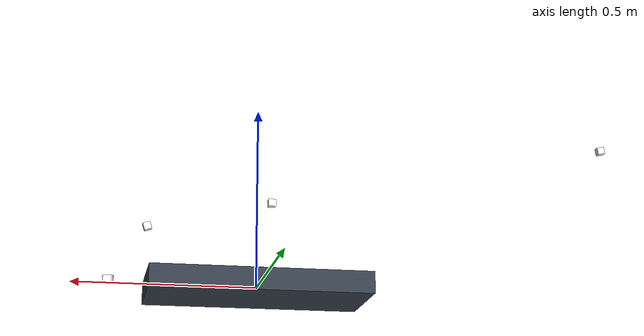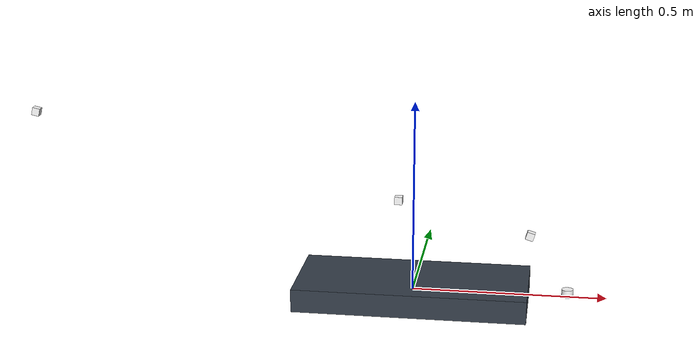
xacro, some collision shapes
<?xml version="1.0" ?>

<robot name="umut" xmlns:xacro="http://www.ros.org/wiki/xacro" >

 <xacro:property name="camera_size" value="0.02"/>
 <xacro:property name="cylinder_lenght" value="0.04" />
 <xacro:property name="cylinder_radius" value="0.075" />

  <material name="black">
    <color rgba="0.0 0.0 0.0 1.0"/>
  </material>
  <material name="blue">
    <color rgba="0.203125 0.23828125 0.28515625 1.0"/>
  </material>
  <material name="green">
    <color rgba="0.0 0.8 0.0 1.0"/>
  </material>
  <material name="grey">
    <color rgba="0.2 0.2 0.2 1.0"/>
  </material>
  <material name="orange">
    <color rgba="1.0 0.423529411765 0.0392156862745 1.0"/>
  </material>
  <material name="brown">
    <color rgba="0.870588235294 0.811764705882 0.764705882353 1.0"/>
  </material>
  <material name="red">
    <color rgba="0.80078125 0.12890625 0.1328125 1.0"/>
  </material>
  <material name="white">
    <color rgba="1.0 1.0 1.0 1.0"/>
  </material>

  <!-- BODY -->

  <link name="link_chassis">
    <pose>0 0 0.1 0 0 0</pose>

      <visual>
         <geometry>
            <mesh scale="0.2 0.2 0.2" filename="/home/neraiv/.gazebo/car_dae/car_019.dae"/>
         </geometry>
         <origin rpy="0 0 -1.5708" xyz="-0.05 0 0.1"/>
         <material name="blue"/>
      </visual>

      <collision>
         <geometry>
            <box size="0.28 0.6 0.06"/>
         </geometry>
        <origin rpy="0 0 -1.5708" xyz="0 0 0"/>
      </collision>

      <inertial>
        <mass value="1"/>
        <origin rpy="0 0 0" xyz="0 0 0.1"/>
        <inertia ixx="0.0395416666667" ixy="0" ixz="0" iyy="0.106208333333" iyz="0" izz="0.106208333333"/>
      </inertial>
  </link>
  <link name= "link_rear_right_wheel">
    <collision name="link_rear_right_wheel_collision">
      <origin rpy="0 1.5707 1.5707" xyz="0 0 0" />
      <geometry>
        <cylinder length="${cylinder_lenght}" radius="${cylinder_radius}"/>
      </geometry>
    </collision>

    <inertial>
      <mass value="0.2"/>
      <origin rpy="0 1.5707 1.5707" xyz="0 0 0"/>
      <inertia ixx="0.00052666666" ixy="0" ixz="0" iyy="0.00052666666" iyz="0" izz="0.001"/>
    </inertial>

  </link>
  <joint name="joint_rear_right_wheel" type="continuous">
    <origin rpy="0 0 0" xyz="-0.3 -0.15 0"/>
    <parent link="link_chassis"/>
    <child link="link_rear_right_wheel"/>
    <axis rpy="0 0 0" xyz="0 1 0"/>
    <limit effort="10000" velocity="1000"/>
    <joint_properties damping="1.0" friction="1.0" />
  </joint>

  <link name="link_rear_left_wheel">

    <collision name="link_rear_left_wheel_collision">
      <origin rpy="0 1.5707 1.5707" xyz="0 0 0" />
      <geometry>
        <cylinder length="${cylinder_lenght}" radius="${cylinder_radius}"/>
      </geometry>
    </collision>

    <inertial>
      <mass value="0.2"/>
      <origin rpy="0 1.5707 1.5707" xyz="0 0 0"/>
      <inertia ixx="0.00052666666" ixy="0" ixz="0" iyy="0.00052666666" iyz="0" izz="0.001"/>
    </inertial>
  </link>
  <joint name="joint_rear_left_wheel" type="continuous">
    <origin rpy="0 0 0" xyz="-0.3 0.15 0"/>
    <parent link="link_chassis"/>
    <child link="link_rear_left_wheel" />
    <axis rpy="0 0 0" xyz="0 1 0"/>
    <limit effort="10000" velocity="1000"/>
    <joint_properties damping="1.0" friction="1.0" />
  </joint>

  <link name="link_right_wheel">
    <collision name="link_right_wheel2_collision">
      <origin rpy="0 1.5707 1.5707" xyz="0 0 0" />
      <geometry>
        <cylinder length="${cylinder_lenght}" radius="${cylinder_radius}"/>
      </geometry>
    </collision>

    <inertial>
      <mass value="0.2"/>
      <origin rpy="0 1.5707 1.5707" xyz="0 0 0"/>
      <inertia ixx="0.00052666666" ixy="0" ixz="0" iyy="0.00052666666" iyz="0" izz="0.001"/>
    </inertial>
  </link>
  <joint name="joint_right_wheel" type="continuous">
    <origin rpy="0 0 0" xyz="0.2 -0.15 0 "/>
    <parent link="link_chassis"/>
    <child link="link_right_wheel" />
    <axis rpy="0 0 0" xyz="0 1 0"/>
    <limit effort="10000" velocity="1000"/>
    <joint_properties damping="1.0" friction="1.0" />
  </joint>

  <link name="link_left_wheel">
    <collision name="link_left_wheel_collision">
      <origin rpy="0 1.5707 1.5707" xyz="0 0 0" />
      <geometry>
        <cylinder length="${cylinder_lenght}" radius="${cylinder_radius}"/>
      </geometry>
    </collision>

    <inertial>
      <mass value="0.2"/>
      <origin rpy="0 1.5707 1.5707" xyz="0 0 0"/>
      <inertia ixx="0.00052666666" ixy="0" ixz="0" iyy="0.00052666666" iyz="0" izz="0.001"/>
    </inertial>
  </link>
  <joint name="joint_left_wheel" type="continuous">
    <origin rpy="0 0 0" xyz="0.2 0.15 0"/>
    <parent link="link_chassis"/>
    <child link="link_left_wheel" />
    <axis rpy="0 0 0" xyz="0 1 0"/>
    <limit effort="10000" velocity="1000"/>
    <joint_properties damping="1.0" friction="1.0"/>
  </joint>

  <!-- SENSORS -->

  <link name="camera_link">
    <collision>
      <origin xyz="0 0 0" rpy="0 0 0"/>
      <geometry>
        <box size="${camera_size} ${camera_size} ${camera_size}"/>
      </geometry>
    </collision>

    <visual>
      <origin xyz="0 0 0" rpy="0 0 0"/>
      <geometry>
        <box size="${camera_size} ${camera_size} ${camera_size}"/>
      </geometry>
      <material name="white"/>
    </visual>

    <inertial>
      <mass value="1e-5" />
      <origin xyz="0 0 0" rpy="0 0 0"/>
      <inertia ixx="1e-6" ixy="0" ixz="0" iyy="1e-6" iyz="0" izz="1e-6" />
    </inertial>
  </link>

  <joint name="camera_joint" type="fixed">
    <axis xyz="0 1 0" />
    <origin xyz="0.3 0 0.16" rpy="0 0.3 0"/>
    <parent link="link_chassis"/>
    <child link="camera_link"/>
  </joint>

  <link name="camera_link2">
    <collision>
      <origin xyz="0 0 0" rpy="0 0 0"/>
      <geometry>
    <box size="${camera_size} ${camera_size} ${camera_size}"/>
      </geometry>
    </collision>

    <visual>
      <origin xyz="0 0 0" rpy="0 0 0"/>
      <geometry>
    <box size="${camera_size} ${camera_size} ${camera_size}"/>
      </geometry>
      <material name="white"/>
    </visual>

    <inertial>
      <mass value="1e-5" />
      <origin xyz="0 0 0" rpy="0 0 0"/>
      <inertia ixx="1e-6" ixy="0" ixz="0" iyy="1e-6" iyz="0" izz="1e-6" />
    </inertial>
  </link>

  <joint name="camera_joint2" type="fixed">
    <axis xyz="0 1 0" />
    <origin xyz="-0.04 0 0.24" rpy="0 0 0"/>
    <parent link="link_chassis"/>
    <child link="camera_link2"/>
  </joint>

  <link name="camera_link3">
    <collision>
      <origin xyz="0 0 0" rpy="0 0 0"/>
      <geometry>
    <box size="${camera_size} ${camera_size} ${camera_size}"/>
      </geometry>
    </collision>

    <visual>
      <origin xyz="0 0 0" rpy="0 0 0"/>
      <geometry>
      <box size="${camera_size} ${camera_size} ${camera_size}"/>
      </geometry>
      <material name="white"/>
    </visual>

    <inertial>
      <mass value="1e-5" />
      <origin xyz="0 0 0" rpy="0 0 0"/>
      <inertia ixx="1e-6" ixy="0" ixz="0" iyy="1e-6" iyz="0" izz="1e-6" />
    </inertial>
  </link>

  <joint name="camera_joint3" type="fixed">
    <axis xyz="0 1 0" />
    <origin xyz="-1 0 0.44" rpy="0 0.2 0"/>
    <parent link="link_chassis"/>
    <child link="camera_link3"/>
  </joint>

  <link name="sensor_laser">
    <inertial>
      <origin xyz="0 0 0" rpy="0 0 0" />
      <mass value="1" />
      <!-- RANDOM INERTIA BELOW -->
      <inertia ixx="0.02" ixy="0" ixz="0" iyy="0.02" iyz="0" izz="0.02"/>
    </inertial>

    <visual>
      <origin xyz="0 0 0" rpy="0 0 0" />
      <geometry>
        <cylinder radius="0.015" length="0.02"/>
      </geometry>
      <material name="white" />
    </visual>

  </link>

  <joint name="joint_sensor_laser" type="fixed">
    <origin xyz="0.4 0 0.01" rpy="0 0 0"/>
    <parent link="link_chassis"/>
    <child link="sensor_laser"/>
  </joint>

  <!-- GAZEBO PLUGİNS -->

  <gazebo reference="camera_link">
    <sensor type="depth" name="camera1">
        <always_on>true</always_on>
        <update_rate>30.0</update_rate>
        <camera name="mekatronom1">
            <horizontal_fov>1.5009831</horizontal_fov>
            <vertical_fov>0.994837</vertical_fov>
            <diagonal_fov>1.640609</diagonal_fov>
            <image>
                <width>640</width>
                <height>480</height>
                <format>R8G8B8</format>
            </image>
            <distortion>
                <k1>0.0</k1>
                <k2>0.0</k2>
                <k3>0.0</k3>
                <p1>0.0</p1>
                <p2>0.0</p2>
                <center>0.5 0.5</center>
            </distortion>
        </camera>
        <plugin name="plugin_name" filename="libgazebo_ros_camera.so">
            <hack_baseline>0.2</hack_baseline>
        </plugin>
    </sensor>
    <material>Gazebo/Green</material>
  </gazebo>

  <gazebo reference="camera_link2">
    <sensor type="depth" name="camera2">
        <always_on>true</always_on>
        <update_rate>30.0</update_rate>
        <camera name="mekatronom2">
            <horizontal_fov>1.5009831</horizontal_fov>
            <vertical_fov>0.994837</vertical_fov>
            <diagonal_fov>1.640609</diagonal_fov>
            <image>
                <width>640</width>
                <height>480</height>
                <format>R8G8B8</format>
            </image>
            <distortion>
                <k1>0.0</k1>
                <k2>0.0</k2>
                <k3>0.0</k3>
                <p1>0.0</p1>
                <p2>0.0</p2>
                <center>0.5 0.5</center>
            </distortion>
        </camera>
        <plugin name="plugin_name" filename="libgazebo_ros_camera.so">
            <hack_baseline>0.2</hack_baseline>
        </plugin>
    </sensor>
    <material>Gazebo/Green</material>
  </gazebo>

  <gazebo reference="camera_link3">
    <sensor type="depth" name="camera3">
        <always_on>true</always_on>
        <update_rate>30.0</update_rate>
        <camera name="mekatronom1">
            <horizontal_fov>1.5009831</horizontal_fov>
            <vertical_fov>0.994837</vertical_fov>
            <diagonal_fov>1.640609</diagonal_fov>
            <image>
                <width>640</width>
                <height>480</height>
                <format>R8G8B8</format>
            </image>
            <distortion>
                <k1>0.0</k1>
                <k2>0.0</k2>
                <k3>0.0</k3>
                <p1>0.0</p1>
                <p2>0.0</p2>
                <center>0.5 0.5</center>
            </distortion>
        </camera>
        <plugin name="plugin_name" filename="libgazebo_ros_camera.so">
            <hack_baseline>0.2</hack_baseline>
        </plugin>
    </sensor>
    <material>Gazebo/Green</material>
  </gazebo>

  <gazebo reference="sensor_laser" >
	  <sensor name="lidar" type="ray">
	    <pose>0 0 0 0 0 0</pose>
	    <always_on>true</always_on>
	    <visualize>false</visualize>
	    <update_rate>5</update_rate>
	    <ray>
	      <scan>
	        <horizontal>
	          <samples>720</samples>
	          <resolution>1.00000</resolution>
	          <min_angle>-3.141592</min_angle>
	          <max_angle>3.141592</max_angle>
	        </horizontal>
	      </scan>
	      <range>
	        <min>0.1</min>
	        <max>10</max>
	        <resolution>0.010000</resolution>
	      </range>
	      <noise>
	        <type>gaussian</type>
	        <mean>0.0</mean>
	        <stddev>0.01</stddev>
	      </noise>
	    </ray>
	    <plugin name="scan" filename="libgazebo_ros_ray_sensor.so">
	      <ros>
	        <remapping>~/out:=scan</remapping>
	      </ros>
	      <output_type>sensor_msgs/LaserScan</output_type>
	      <frame_name>lidar_link</frame_name>
	    </plugin>
	  </sensor>
  </gazebo>

   <gazebo>
      <plugin name='skid_steer_drive' filename='libgazebo_ros_diff_drive.so'>

        <ros>
          <namespace>/umut</namespace>
        </ros>

        <!-- Number of wheel pairs -->
        <num_wheel_pairs>2</num_wheel_pairs>

        <!-- wheels0 -->
        <left_joint>joint_left_wheel</left_joint>
        <right_joint>joint_right_wheel</right_joint>

        <!-- wheels1-->
        <left_joint>joint_rear_left_wheel</left_joint>
        <right_joint>joint_rear_right_wheel</right_joint>

        <!-- kinematics -->
        <wheel_separation>0.4</wheel_separation>
        <wheel_separation>0.4</wheel_separation>

        <wheel_diameter>0.2</wheel_diameter>
        <wheel_diameter>0.2</wheel_diameter>

        <!-- limits -->
        <max_wheel_torque>10</max_wheel_torque>
        <max_wheel_acceleration>1.0</max_wheel_acceleration>

        <!-- output -->
        <publish_odom>true</publish_odom>
        <publish_odom_tf>true</publish_odom_tf>
        <publish_wheel_tf>true</publish_wheel_tf>

        <odometry_frame>odom</odometry_frame>
        <robot_base_frame>link_chassis</robot_base_frame>

      </plugin>
  </gazebo>

</robot>
